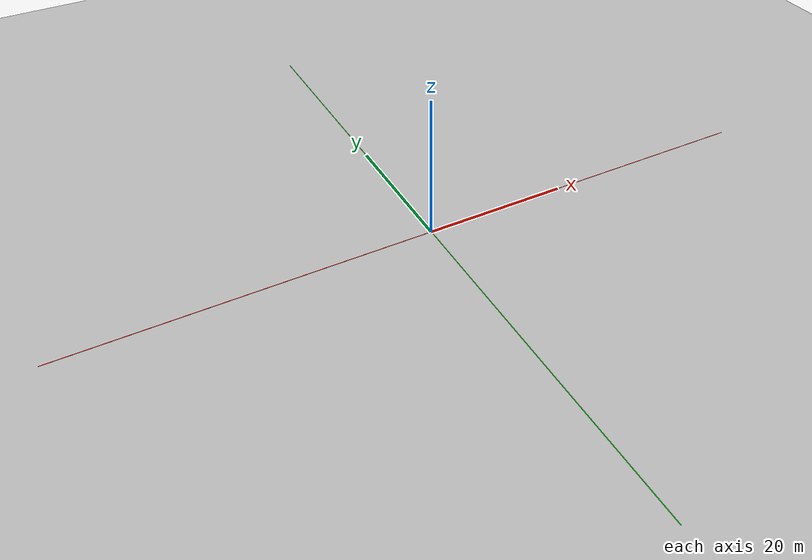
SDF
<?xml version="1.0" ?>
<sdf version="1.6">
  <world name="engineering_grid_world_100m">

    <physics type="ode">
      <max_step_size>0.001</max_step_size>
      <real_time_factor>1</real_time_factor>
      <real_time_update_rate>1000</real_time_update_rate>
      <ode>
        <solver>
          <type>quick</type>
          <iters>50</iters>
        </solver>
      </ode>
    </physics>

    <include>
      <uri>model://sun</uri>
    </include>

    <model name="measuring_ground_100m">
      <static>true</static>
      <link name="link">
        <collision name="collision">
          <geometry>
            <plane>
              <normal>0 0 1</normal>
              <size>100 100</size>
            </plane>
          </geometry>
          <surface>
            <friction>
              <ode>
                <mu>100.0</mu>
                <mu2>100.0</mu2>
              </ode>
            </friction>
          </surface>
        </collision>

        <visual name="visual">
          <cast_shadows>false</cast_shadows>
          <geometry>
            <plane>
              <normal>0 0 1</normal>
              <size>100 100</size>
            </plane>
          </geometry>
          <material>
            <script>
              <uri>file://media/materials/scripts/gazebo.material</uri>
              <name>Gazebo/Grid</name>
            </script>
          </material>
        </visual>
      </link>
    </model>

    <model name="origin_axes">
      <static>true</static>
      <pose>0 0 0.01 0 0 0</pose>
      <link name="link">
        <visual name="x_axis_line">
          <geometry><box><size>100 0.1 0.005</size></box></geometry>
          <material><ambient>1 0 0 1</ambient></material> </visual>
        <visual name="y_axis_line">
          <pose>0 0 0 0 0 1.5707</pose>
          <geometry><box><size>100 0.1 0.005</size></box></geometry>
          <material><ambient>0 1 0 1</ambient></material> </visual>
      </link>
    </model>

  </world>
</sdf>
